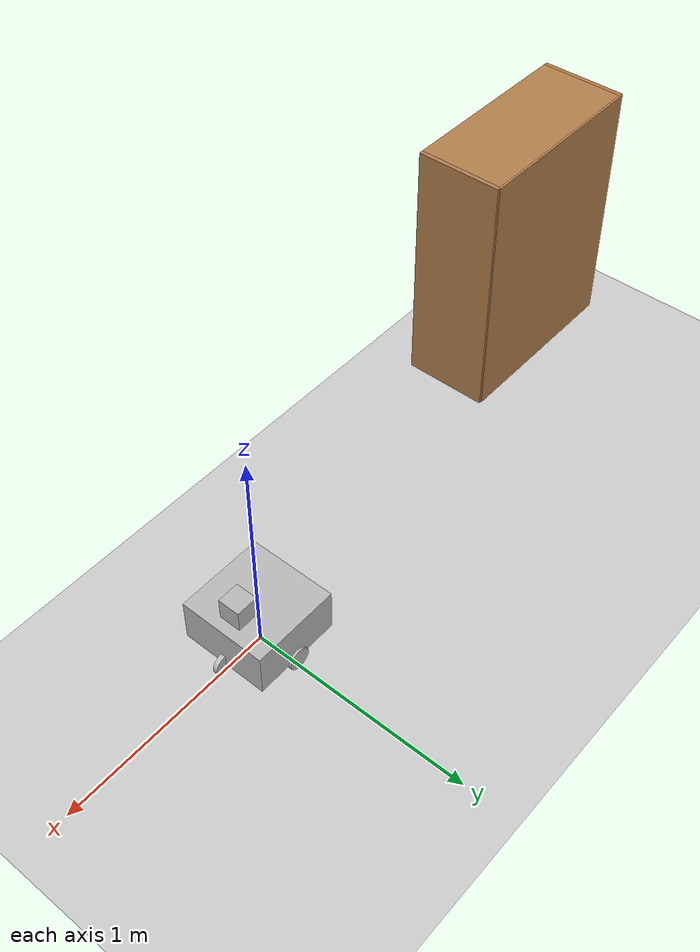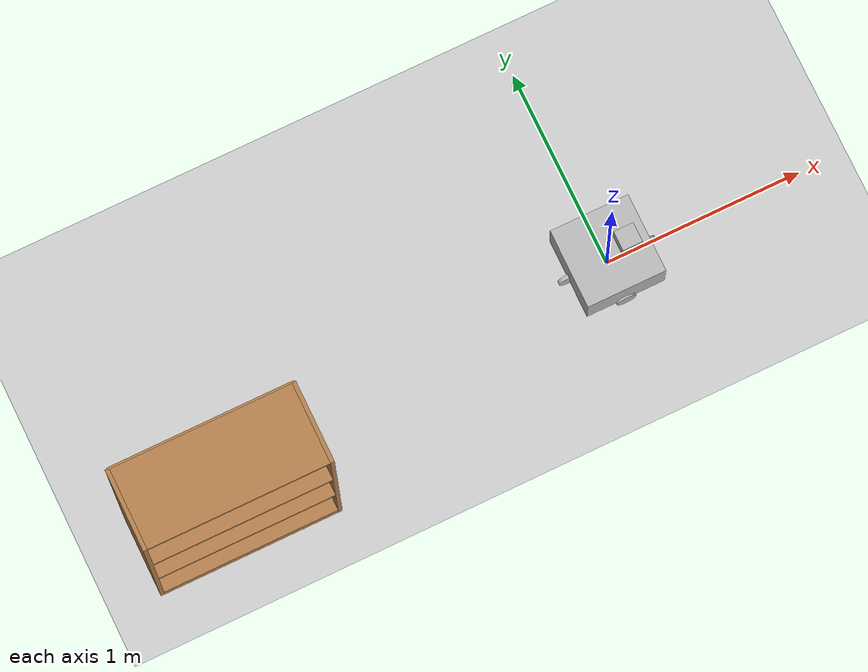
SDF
<sdf version="1.7">
 <world name="default">
  <model name="ground_plane">
   <static>1</static>
   <link name="link">
    <collision name="collision">
     <geometry><plane><normal>0 0 1</normal><size>100 100</size></plane></geometry>
     <surface>
      <contact><collide_bitmask>65535</collide_bitmask></contact>
      <friction><ode><mu>100</mu><mu2>50</mu2></ode></friction>
     </surface>
    </collision>
    <visual name="visual">
     <cast_shadows>0</cast_shadows>
     <geometry><plane><normal>0 0 1</normal><size>100 100</size></plane></geometry>
     <material>
      <script><uri>file://media/materials/scripts/gazebo.material</uri><name>Gazebo/Grey</name></script>
     </material>
    </visual>
   </link>
  </model>
  <model name="differential_drive_robot">
   <link name="base_link">
    <inertial>
     <pose>1e-06 0 0.1 0 -0 0</pose>
     <mass>1.00001</mass>
     <inertia>
      <ixx>0.100001</ixx>
      <ixy>0</ixy>
      <ixz>-4.99995e-08</ixz>
      <iyy>0.100001</iyy>
      <iyz>0</iyz>
      <izz>0.100001</izz>
     </inertia>
    </inertial>
    <collision name="base_link_collision"><geometry><box><size>0.4 0.4 0.2</size></box></geometry></collision>
    <collision name="base_link_fixed_joint_lump__laser_collision_1">
     <pose>0.1 0 0.15 0 -0 0</pose>
     <geometry><box><size>0.1 0.1 0.1</size></box></geometry>
    </collision>
    <visual name="base_link_visual"><geometry><box><size>0.4 0.4 0.2</size></box></geometry></visual>
    <visual name="base_link_fixed_joint_lump__laser_visual_1">
     <pose>0.1 0 0.15 0 -0 0</pose>
     <geometry><box><size>0.1 0.1 0.1</size></box></geometry>
    </visual>
    <sensor name="laser_sensor" type="laser">
     <visualize>1</visualize>
     <update_rate>40</update_rate>
     <pose>0.1 0 0.15 0 -0 0</pose>
     <range><min>0.1</min><max>10.0</max><resolution>1</resolution></range>
     <channels><channel name="intensity"/></channels>
    </sensor>
   </link>
   <joint name="back_wheel_joint" type="revolute">
    <pose relative_to="base_link">-0.2 0 -0.1 0 -0 0</pose>
    <parent>base_link</parent>
    <child>back_wheel</child>
    <axis>
     <xyz>0 1 0</xyz>
     <limit><lower>-1e+16</lower><upper>1e+16</upper></limit>
     <dynamics><spring_reference>0</spring_reference><spring_stiffness>0</spring_stiffness></dynamics>
    </axis>
   </joint>
   <link name="back_wheel">
    <pose relative_to="back_wheel_joint">0 0 0 0 -0 0</pose>
    <inertial>
     <mass>0.5</mass>
     <inertia><ixx>0.1</ixx><ixy>0</ixy><ixz>0</ixz><iyy>0.1</iyy><iyz>0</iyz><izz>0.1</izz></inertia>
    </inertial>
    <collision name="back_wheel_collision">
     <pose>0 0 0 1.5708 -0 0</pose>
     <geometry><cylinder><length>0.02</length><radius>0.05</radius></cylinder></geometry>
    </collision>
    <visual name="back_wheel_visual">
     <pose>0 0 0 1.5708 -0 0</pose>
     <geometry><cylinder><length>0.02</length><radius>0.05</radius></cylinder></geometry>
    </visual>
   </link>
   <joint name="front_wheel_joint" type="revolute">
    <pose relative_to="base_link">0.2 0 -0.1 0 -0 0</pose>
    <parent>base_link</parent>
    <child>front_wheel</child>
    <axis>
     <xyz>0 1 0</xyz>
     <limit><lower>-1e+16</lower><upper>1e+16</upper></limit>
     <dynamics><spring_reference>0</spring_reference><spring_stiffness>0</spring_stiffness></dynamics>
    </axis>
   </joint>
   <link name="front_wheel">
    <pose relative_to="front_wheel_joint">0 0 0 0 -0 0</pose>
    <inertial>
     <mass>0.5</mass>
     <inertia><ixx>0.1</ixx><ixy>0</ixy><ixz>0</ixz><iyy>0.1</iyy><iyz>0</iyz><izz>0.1</izz></inertia>
    </inertial>
    <collision name="front_wheel_collision">
     <pose>0 0 0 1.5708 -0 0</pose>
     <geometry><cylinder><length>0.02</length><radius>0.05</radius></cylinder></geometry>
    </collision>
    <visual name="front_wheel_visual">
     <pose>0 0 0 1.5708 -0 0</pose>
     <geometry><cylinder><length>0.02</length><radius>0.05</radius></cylinder></geometry>
    </visual>
   </link>
   <joint name="left_wheel_joint" type="revolute">
    <pose relative_to="base_link">0 0.2 -0.1 0 -0 0</pose>
    <parent>base_link</parent>
    <child>left_wheel</child>
    <axis>
     <xyz>0 1 0</xyz>
     <limit><lower>-1e+16</lower><upper>1e+16</upper></limit>
     <dynamics><spring_reference>0</spring_reference><spring_stiffness>0</spring_stiffness></dynamics>
    </axis>
   </joint>
   <link name="left_wheel">
    <pose relative_to="left_wheel_joint">0 0 0 0 -0 0</pose>
    <inertial>
     <mass>0.5</mass>
     <inertia><ixx>0.1</ixx><ixy>0</ixy><ixz>0</ixz><iyy>0.1</iyy><iyz>0</iyz><izz>0.1</izz></inertia>
    </inertial>
    <collision name="left_wheel_collision">
     <pose>0 0 0 1.5708 -0 0</pose>
     <geometry><cylinder><length>0.02</length><radius>0.05</radius></cylinder></geometry>
    </collision>
    <visual name="left_wheel_visual">
     <pose>0 0 0 1.5708 -0 0</pose>
     <geometry><cylinder><length>0.02</length><radius>0.05</radius></cylinder></geometry>
    </visual>
   </link>
   <joint name="right_wheel_joint" type="revolute">
    <pose relative_to="base_link">0 -0.2 -0.1 0 -0 0</pose>
    <parent>base_link</parent>
    <child>right_wheel</child>
    <axis>
     <xyz>0 1 0</xyz>
     <limit><lower>-1e+16</lower><upper>1e+16</upper></limit>
     <dynamics><spring_reference>0</spring_reference><spring_stiffness>0</spring_stiffness></dynamics>
    </axis>
   </joint>
   <link name="right_wheel">
    <pose relative_to="right_wheel_joint">0 0 0 0 -0 0</pose>
    <inertial>
     <mass>0.5</mass>
     <inertia><ixx>0.1</ixx><ixy>0</ixy><ixz>0</ixz><iyy>0.1</iyy><iyz>0</iyz><izz>0.1</izz></inertia>
    </inertial>
    <collision name="right_wheel_collision">
     <pose>0 0 0 1.5708 -0 0</pose>
     <geometry><cylinder><length>0.02</length><radius>0.05</radius></cylinder></geometry>
    </collision>
    <visual name="right_wheel_visual">
     <pose>0 0 0 1.5708 -0 0</pose>
     <geometry><cylinder><length>0.02</length><radius>0.05</radius></cylinder></geometry>
    </visual>
   </link>
   <static>0</static>
   <plugin name="robot_state_publisher" filename="libgazebo_ros_robot_state.so">
    <robotNamespace>/</robotNamespace>
   </plugin>
   <plugin name="joint_state_publisher" filename="libgazebo_ros_joint_state_publisher.so">
    <joint_state_topic>joint_states</joint_state_topic>
    <robotNamespace>/</robotNamespace>
   </plugin>
   <plugin name="differential_drive_controller" filename="libgazebo_ros_diff_drive.so">
    <robotNamespace>/</robotNamespace>
    <leftJoint>left_wheel_joint</leftJoint>
    <rightJoint>right_wheel_joint</rightJoint>
    <wheelSeparation>0.4</wheelSeparation>
    <wheelRadius>0.05</wheelRadius>
    <publishWheelTF>1</publishWheelTF>
    <publishWheelJointState>1</publishWheelJointState>
    <publishTf>1</publishTf>
    <updateRate>50</updateRate>
    <commandTopic>cmd_vel</commandTopic>
    <odometryTopic>odom</odometryTopic>
    <odometryFrame>odom</odometryFrame>
    <robotBaseFrame>base_link</robotBaseFrame>
    <odometrySource>1</odometrySource>
    <wheelDiameter>0.1</wheelDiameter>
    <wheelAcceleration>0</wheelAcceleration>
    <wheelTorque>5</wheelTorque>
   </plugin>
   <pose>3.2e-05 1.3e-05 0.15 -0 -0 -9e-05</pose>
  </model>
  <model name="bookshelf">
   <static>1</static>
   <link name="link">
    <inertial><mass>1</mass></inertial>
    <collision name="back">
     <pose>0 0.005 0.6 0 -0 0</pose>
     <geometry><box><size>0.9 0.01 1.2</size></box></geometry>
    </collision>
    <visual name="visual1">
     <pose>0 0.005 0.6 0 -0 0</pose>
     <geometry><box><size>0.9 0.01 1.2</size></box></geometry>
     <material>
      <script><uri>file://media/materials/scripts/gazebo.material</uri><name>Gazebo/Wood</name></script>
     </material>
    </visual>
    <collision name="left_side">
     <pose>0.45 -0.195 0.6 0 -0 0</pose>
     <geometry><box><size>0.02 0.4 1.2</size></box></geometry>
    </collision>
    <visual name="visual2">
     <pose>0.45 -0.195 0.6 0 -0 0</pose>
     <geometry><box><size>0.02 0.4 1.2</size></box></geometry>
     <material>
      <script><uri>file://media/materials/scripts/gazebo.material</uri><name>Gazebo/Wood</name></script>
     </material>
    </visual>
    <collision name="right_side">
     <pose>-0.45 -0.195 0.6 0 -0 0</pose>
     <geometry><box><size>0.02 0.4 1.2</size></box></geometry>
    </collision>
    <visual name="visual3">
     <pose>-0.45 -0.195 0.6 0 -0 0</pose>
     <geometry><box><size>0.02 0.4 1.2</size></box></geometry>
     <material>
      <script><uri>file://media/materials/scripts/gazebo.material</uri><name>Gazebo/Wood</name></script>
     </material>
    </visual>
    <collision name="bottom">
     <pose>0 -0.195 0.03 0 -0 0</pose>
     <geometry><box><size>0.88 0.4 0.06</size></box></geometry>
    </collision>
    <visual name="visual4">
     <pose>0 -0.195 0.03 0 -0 0</pose>
     <geometry><box><size>0.88 0.4 0.06</size></box></geometry>
     <material>
      <script><uri>file://media/materials/scripts/gazebo.material</uri><name>Gazebo/Wood</name></script>
     </material>
    </visual>
    <collision name="top">
     <pose>0 -0.195 1.19 0 -0 0</pose>
     <geometry><box><size>0.88 0.4 0.02</size></box></geometry>
    </collision>
    <visual name="visual5">
     <pose>0 -0.195 1.19 0 -0 0</pose>
     <geometry><box><size>0.88 0.4 0.02</size></box></geometry>
     <material>
      <script><uri>file://media/materials/scripts/gazebo.material</uri><name>Gazebo/Wood</name></script>
     </material>
    </visual>
    <collision name="low_shelf">
     <pose>0 -0.195 0.43 0 -0 0</pose>
     <geometry><box><size>0.88 0.4 0.02</size></box></geometry>
    </collision>
    <visual name="visual6">
     <pose>0 -0.195 0.43 0 -0 0</pose>
     <geometry><box><size>0.88 0.4 0.02</size></box></geometry>
     <material>
      <script><uri>file://media/materials/scripts/gazebo.material</uri><name>Gazebo/Wood</name></script>
     </material>
    </visual>
    <collision name="high_shelf">
     <pose>0 -0.195 0.8 0 -0 0</pose>
     <geometry><box><size>0.88 0.4 0.02</size></box></geometry>
    </collision>
    <visual name="visual7">
     <pose>0 -0.195 0.8 0 -0 0</pose>
     <geometry><box><size>0.88 0.4 0.02</size></box></geometry>
     <material>
      <script><uri>file://media/materials/scripts/gazebo.material</uri><name>Gazebo/Wood</name></script>
     </material>
    </visual>
   </link>
   <pose>-2.06915 -0.12986 0 0 -0 0</pose>
  </model>
 </world>
</sdf>
